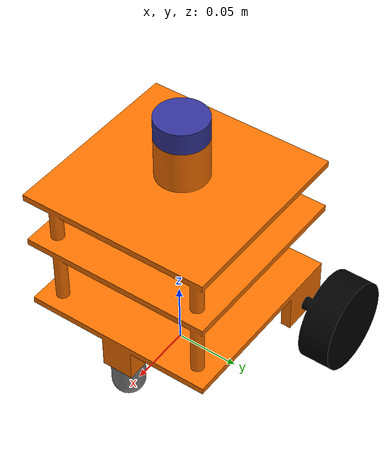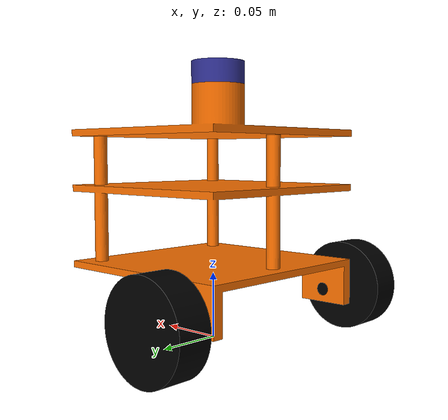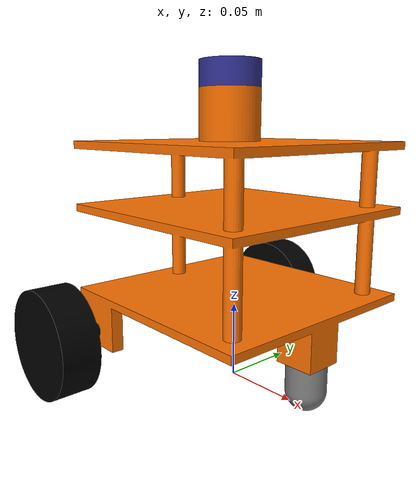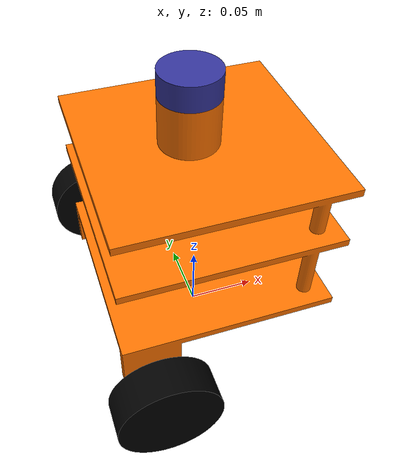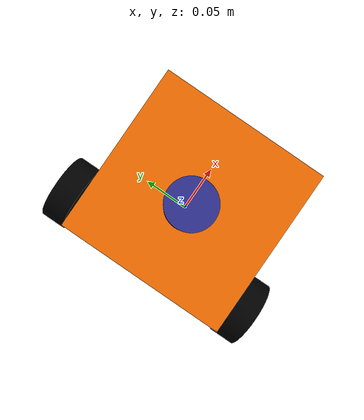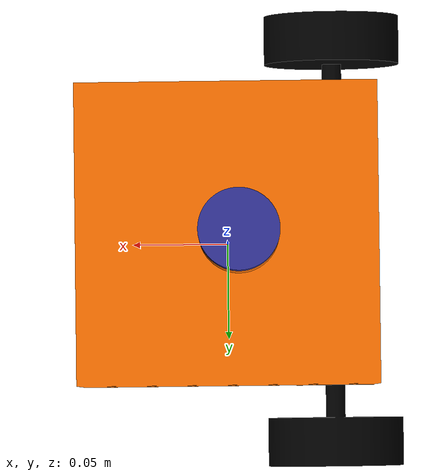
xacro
<?xml version="1.0" ?>
<robot name="squarobot" xmlns:xacro="http://www.ros.org/wiki/xacro">

<xacro:include filename="$(find squarobot_urdf)/urdf/materials.xacro" />
<xacro:include filename="$(find squarobot_urdf)/urdf/squaroboturdf.trans" />
<xacro:include filename="$(find squarobot_urdf)/urdf/squaroboturdf.gazebo" />

<link name="base_footprint"/>

<joint name="base_footprint_joint" type="fixed">
  <parent link="base_link"/>
  <child link="base_footprint"/>
  <origin xyz="0 0 0" rpy="0 0 0"/>
</joint>
<link name="base_link">
  <inertial>
    <origin xyz="0.0003749117484439649 0.0 0.11103342002103095" rpy="0 0 0"/>
    <mass value="3.4105557661008468"/>
    <inertia ixx="0.013426" iyy="0.01385" izz="0.012658" ixy="-0.0" iyz="0.0" ixz="0.00012"/>
  </inertial>
  <visual>
    <origin xyz="0 0 0" rpy="0 0 0"/>
    <geometry>
      <mesh filename="file://$(find squarobot_urdf)/meshes/base_link.stl" scale="0.001 0.001 0.001"/>
    </geometry>
    <material name="Neon_Orange">
      <color rgba="1.0 0.45 0.0 1.0"/>
    </material>
  </visual>
  <collision>
    <origin xyz="0 0 0.02" rpy="0 0 0"/>
    <geometry>
      <mesh filename="file://$(find squarobot_urdf)/meshes/base_link.stl" scale="0.001 0.001 0.001"/>
    </geometry>
  </collision>
</link>

<link name="right_wheel_1">
  <inertial>
    <origin xyz="-1.0436096431476471e-14 -0.03680590494479116 0.0" rpy="0 0 0"/>
    <mass value="0.7705486403220919"/>
    <inertia ixx="0.000281" iyy="0.000463" izz="0.000281" ixy="-0.0" iyz="-0.0" ixz="0.0"/>
  </inertial>
  <visual>
    <origin xyz="0.055 0.067 -0.035" rpy="0 0 0"/>
    <geometry>
      <mesh filename="file://$(find squarobot_urdf)/meshes/right_wheel_1.stl" scale="0.001 0.001 0.001"/>
    </geometry>
    <material name="black"/>
  </visual>
  <collision>
    <origin xyz="0 0 0" rpy="1.5708 0 0"/>
    <geometry>
      <cylinder radius="0.035" length="0.02"/>
    </geometry>
  </collision>
</link>

<link name="left_wheel_1">
  <inertial>
    <origin xyz="1.0366707492437399e-14 0.036805904944791135 -6.938893903907228e-18" rpy="0 0 0"/>
    <mass value="0.7705486403220932"/>
    <inertia ixx="0.000281" iyy="0.000463" izz="0.000281" ixy="0.0" iyz="0.0" ixz="-0.0"/>
  </inertial>
  <visual>
    <origin xyz="0.055 -0.067 -0.035" rpy="0 0 0"/>
    <geometry>
      <mesh filename="file://$(find squarobot_urdf)/meshes/left_wheel_1.stl" scale="0.001 0.001 0.001"/>
    </geometry>
    <material name="black"/>
  </visual>
  <collision>
    <origin xyz="0 0 0" rpy="1.5708 0 0"/>
    <geometry>
      <cylinder radius="0.035" length="0.02"/>
    </geometry>
  </collision>
</link>

<link name="lidar_1">
  <inertial>
    <origin xyz="-1.734723475976807e-18 3.3260702551252488e-18 0.008500000000000063" rpy="0 0 0"/>
    <mass value="0.16769821584862302"/>
    <inertia ixx="2.1e-05" iyy="2.1e-05" izz="3.4e-05" ixy="0.0" iyz="-0.0" ixz="-0.0"/>
  </inertial>
  <visual>
    <origin xyz="0.005889 -0.0 -0.19325" rpy="0 0 0"/>
    <geometry>
      <mesh filename="file://$(find squarobot_urdf)/meshes/lidar_1.stl" scale="0.001 0.001 0.001"/>
    </geometry>
    <material name="lidar_blue"/>
  </visual>
  <collision>
    <origin xyz="0.005889 -0.0 -0.19325" rpy="0 0 0"/>
    <geometry>
      <mesh filename="file://$(find squarobot_urdf)/meshes/lidar_1.stl" scale="0.001 0.001 0.001"/>
    </geometry>
  </collision>
</link>

<link name="caster_1">
  <inertial>
    <origin xyz="-2.7755575615628914e-17 -1.400812040352104e-18 -0.013084677419354804" rpy="0 0 0"/>
    <mass value="0.09954512659519218"/>
    <inertia ixx="1e-05" iyy="1e-05" izz="7e-06" ixy="-0.0" iyz="-0.0" ixz="0.0"/>
  </inertial>
  <visual>
    <origin xyz="-0.0625 -0.0 -0.03" rpy="0 0 0"/>
    <geometry>
      <mesh filename="file://$(find squarobot_urdf)/meshes/caster_1.stl" scale="0.001 0.001 0.001"/>
    </geometry>
    <material name="grey"/>
  </visual>
  <collision>
    <origin xyz="0 0 0" rpy="0 0 0"/>
    <geometry>
      <sphere radius="0.035"/>
    </geometry>
  </collision>
</link>

<joint name="right_wheel" type="continuous">
  <origin xyz="-0.055 -0.067 0.035" rpy="0 0 0"/>
  <parent link="base_link"/>
  <child link="right_wheel_1"/>
  <axis xyz="0.0 1.0 0.0"/>
</joint>

<joint name="left_wheel" type="continuous">
  <origin xyz="-0.055 0.067 0.035" rpy="0 0 0"/>
  <parent link="base_link"/>
  <child link="left_wheel_1"/>
  <axis xyz="0.0 1.0 0.0"/>
</joint>

<joint name="lidar" type="fixed">
  <origin xyz="-0.005889 0.0 0.19325" rpy="0 0 0"/>
  <parent link="base_link"/>
  <child link="lidar_1"/>
</joint>

<joint name="caster_joint" type="fixed">
  <origin xyz="0.0625 0.0 0.03" rpy="0 0 0"/>
  <parent link="base_link"/>
  <child link="caster_1"/>
</joint>

</robot>

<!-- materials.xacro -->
<robot name="squareroboturdf" xmlns:xacro="http://www.ros.org/wiki/xacro" >

  <!-- Define Material Colors -->

  <!-- MDF board (light brown / khaki) -->
  <material name="mdf">
    <color rgba="0.76 0.69 0.57 1.000"/> <!-- MDF-like Khaki -->
  </material>

  <!-- Black rubber (wheels) -->
  <material name="black">
    <color rgba="0.000 0.000 0.000 1.000"/> <!-- Black -->
  </material>

  <!-- Dark grey plastic -->
  <material name="dark_grey">
    <color rgba="0.250 0.250 0.250 1.000"/> <!-- Dark Grey -->
  </material>

  <!-- Caster (metallic grey) -->
  <material name="grey">
    <color rgba="0.500 0.500 0.500 1.000"/> <!-- Grey -->
  </material>

  <!-- Lidar (blue highlight so it stands out) -->
  <material name="lidar_blue">
    <color rgba="0.200 0.200 0.600 1.000"/> <!-- Dark Blue -->
  </material>

</robot>

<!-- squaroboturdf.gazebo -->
<robot name="squarobot" xmlns:xacro="http://www.ros.org/wiki/xacro" >

  <xacro:property name="body_color" value="Gazebo/Khaki" />
  <xacro:property name="wheel_color" value="Gazebo/Black" />
  <xacro:property name="lidar_color" value="Gazebo/Blue" />
  <xacro:property name="caster_color" value="Gazebo/Grey" />

  <gazebo reference="base_link">
    <material>${body_color}</material>
    <mu1>0.0</mu1>
    <mu2>0.0</mu2>
    <self_collide>true</self_collide>
    <gravity>true</gravity>
  </gazebo>

  <gazebo reference="right_wheel_1">
    <material>${wheel_color}</material>
    <mu1>100000.0</mu1>
    <mu2>100000.0</mu2>
    <self_collide>true</self_collide>
  </gazebo>

  <gazebo reference="left_wheel_1">
    <material>${wheel_color}</material>
    <mu1>100000.0</mu1>
    <mu2>100000.0</mu2>
    <self_collide>true</self_collide>
  </gazebo>

  <gazebo reference="lidar_1">
    <material>${lidar_color}</material>
    <mu1>0.2</mu1>
    <mu2>0.2</mu2>
    <self_collide>true</self_collide>
  </gazebo>

  <gazebo reference="caster_1">
    <material>${caster_color}</material>
    <mu1>0.0</mu1>
    <mu2>0.0</mu2>
    <self_collide>true</self_collide>
  </gazebo>

  <gazebo reference="lidar_1">
    <sensor name="ydlidar" type="gpu_lidar">
      <always_on>true</always_on>
      <visualize>true</visualize>
      <update_rate>10</update_rate>
      <topic>scan</topic>
      <gz_frame_id>lidar_1</gz_frame_id>
      <lidar>
        <scan>
          <horizontal>
            <samples>360</samples>
            <resolution>1.000000</resolution>
            <min_angle>-3.14159</min_angle>
            <max_angle>3.14159</max_angle>
          </horizontal>
        </scan>
        <range>
          <min>0.12</min>
          <max>12.0</max>
          <resolution>0.015000</resolution>
        </range>
        <noise>
          <type>gaussian</type>
          <mean>0.0</mean>
          <stddev>0.01</stddev>
        </noise>
      </lidar>
    </sensor>
  </gazebo>

  <gazebo>
    <plugin filename="gz-sim-diff-drive-system" name="gz::sim::systems::DiffDrive">
      <left_joint>left_wheel</left_joint>
      <right_joint>right_wheel</right_joint>
      <wheel_separation>0.134</wheel_separation>
      <wheel_radius>0.035</wheel_radius>
      <odom_publish_frequency>30</odom_publish_frequency>
      <topic>cmd_vel</topic>
      <odom_topic>odom</odom_topic>
      <tf_topic>tf</tf_topic>
      <frame_id>odom</frame_id>
      <child_frame_id>base_link</child_frame_id>
      <max_linear_acceleration>0.5</max_linear_acceleration>
      <max_angular_acceleration>1.0</max_angular_acceleration>
    </plugin>
  </gazebo>

  <gazebo>
    <plugin filename="gz-sim-joint-state-publisher-system" name="gz::sim::systems::JointStatePublisher">
      <topic>joint_states</topic>
      <joint_name>left_wheel</joint_name>
      <joint_name>right_wheel</joint_name>
    </plugin>
  </gazebo>

</robot>
